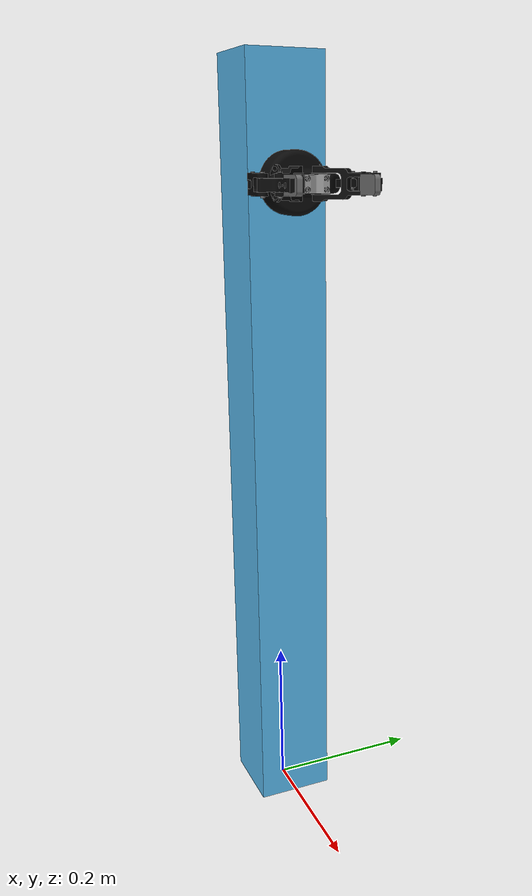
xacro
<?xml version="1.0" ?>

<robot name="robotiq_2f_gripper" xmlns:xacro="http://www.ros.org/wiki/xacro">
  <xacro:include filename="$(find robotiq_description)/urdf/robotiq_2f_gripper.urdf.xacro" />

  <gazebo>
    <plugin name="gazebo_ros_control" filename="libgazebo_ros_control.so">
      <robotNamespace>/</robotNamespace>
    </plugin>
  </gazebo>

  <link name="world"/>
  <joint name="world_fixed" type="fixed">
    <origin xyz="0 0 0" rpy="0 0 0"/>
    <parent link="world"/>
    <child link="gripper_root_link"/>
  </joint>

  <link name="gripper_root_link">
    <visual>
      <origin xyz="0 0 0.5" rpy="0 0 0"/>
      <geometry>
        <box size="0.1 0.1 1.0"/>
      </geometry>
    </visual>
    <collision>
      <origin xyz="0 0 0.5" rpy="0 0 0"/>
      <geometry>
        <box size="0.1 0.1 1.0"/>
      </geometry>
    </collision>
    <inertial>
      <mass value="1e2" />
      <origin xyz="0.0 0.0 0.0" />
      <inertia ixx = "0.000001" ixy = "0.000000" ixz = "0.000000"
           iyx = "0.000000" iyy = "0.000001" iyz = "0.000000"
           izx = "0.000000" izy = "0.000000" izz = "0.000001" />
    </inertial>
  </link>

  <xacro:robotiq_2f_gripper prefix="" parent="gripper_root_link" >
    <origin xyz="0.05 0 0.85" rpy="0 0 0"/>
  </xacro:robotiq_2f_gripper>

</robot>

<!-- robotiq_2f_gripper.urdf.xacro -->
<robot name="robotiq_2f_gripper" xmlns:xacro="http://www.ros.org/wiki/xacro">

  <xacro:include filename="$(find robotiq_description)/urdf/robotiq_2f_gripper.transmission.xacro" />

  <xacro:macro name="robotiq_2f_gripper" params="prefix parent *origin">

    <joint name="${prefix}robotiq_2f_base_joint" type="fixed">
      <parent link="${parent}"/>
      <child link="${prefix}robotiq_2f_base_link"/>
      <xacro:insert_block name="origin"/>
    </joint>

    <link name="${prefix}robotiq_2f_base_link">
      <visual>
        <geometry>
          <mesh filename="package://robotiq_description/meshes/visual/robotiq_2f_base_link.dae"/>
        </geometry>
      </visual>
      <collision>
        <geometry>
          <mesh filename="package://robotiq_description/meshes/collision/robotiq_2f_base_link.stl"/>
        </geometry>
      </collision>
      <inertial>
        <mass value="0.636951" />
        <origin xyz="0.0 0.0 0.0" />
        <inertia ixx = "0.000380" ixy = "0.000000" ixz = "0.000000"
             iyx = "0.000000" iyy = "0.001110" iyz = "0.000000"
             izx = "0.000000" izy = "0.000000" izz = "0.001171" />
      </inertial>
    </link>

    <joint name="${prefix}robotiq_2f_left_knuckle_joint" type="revolute">
      <parent link="${prefix}robotiq_2f_base_link"/>
      <child link="${prefix}robotiq_2f_left_knuckle_link"/>
      <axis xyz="0 0 1"/>
      <origin rpy="${pi} 0.0 0.0" xyz="0.05490451627 0.03060114443 0.0"/>
      <limit lower="0.0" upper="0.80285" velocity="0.5" effort="1000"/>
    </joint>

    <joint name="${prefix}robotiq_2f_right_knuckle_joint" type="continuous">
      <parent link="${prefix}robotiq_2f_base_link"/>
      <child link="${prefix}robotiq_2f_right_knuckle_link"/>
      <axis xyz="0 0 1"/>
      <origin rpy="0.0 0.0 0.0" xyz="0.05490451627 -0.03060114443 0.0"/>
      <limit lower="-3.14" upper="3.14" velocity="100.0" effort="1000"/>
      <mimic joint="${prefix}robotiq_2f_left_knuckle_joint"/>
    </joint>

    <link name="${prefix}robotiq_2f_left_knuckle_link">
      <visual>
        <geometry>
          <mesh filename="package://robotiq_description/meshes/visual/robotiq_2f_knuckle_link.dae"/>
        </geometry>
      </visual>
      <collision>
        <geometry>
          <mesh filename="package://robotiq_description/meshes/collision/robotiq_2f_knuckle_link.stl"/>
        </geometry>
      </collision>
      <inertial>
        <mass value="0.018491" />
        <origin xyz="0.0 0.0 0.0" />
        <inertia ixx = "0.000009" ixy = "-0.000001" ixz = "0.000000"
             iyx = "-0.000001" iyy = "0.000001" iyz = "0.000000"
             izx = "0.000000" izy = "0.000000" izz = "0.000010" />
      </inertial>
    </link>

    <link name="${prefix}robotiq_2f_right_knuckle_link">
      <visual>
        <geometry>
          <mesh filename="package://robotiq_description/meshes/visual/robotiq_2f_knuckle_link.dae"/>
        </geometry>
      </visual>
      <collision>
        <geometry>
          <mesh filename="package://robotiq_description/meshes/collision/robotiq_2f_knuckle_link.stl"/>
        </geometry>
      </collision>
      <inertial>
        <mass value="0.018491" />
        <origin xyz="0.0 0.0 0.0" />
        <inertia ixx = "0.000009" ixy = "-0.000001" ixz = "0.000000"
             iyx = "-0.000001" iyy = "0.000001" iyz = "0.000000"
             izx = "0.000000" izy = "0.000000" izz = "0.000010" />
      </inertial>
    </link>

    <joint name="${prefix}robotiq_2f_left_finger_joint" type="fixed">
      <parent link="${prefix}robotiq_2f_left_knuckle_link"/>
      <child link="${prefix}robotiq_2f_left_finger_link"/>
      <origin xyz="-0.00408552455 -0.03148604435 0.0" rpy="0 0 0" />
    </joint>

    <joint name="${prefix}robotiq_2f_right_finger_joint" type="fixed">
      <parent link="${prefix}robotiq_2f_right_knuckle_link"/>
      <child link="${prefix}robotiq_2f_right_finger_link"/>
      <origin xyz="-0.00408552455 -0.03148604435 0.0" rpy="0 0 0" />
    </joint>

    <link name="${prefix}robotiq_2f_left_finger_link">
      <visual>
        <geometry>
          <mesh filename="package://robotiq_description/meshes/visual/robotiq_2f_finger_link.dae"/>
        </geometry>
      </visual>
      <collision>
        <geometry>
          <mesh filename="package://robotiq_description/meshes/collision/robotiq_2f_finger_link.stl"/>
        </geometry>
      </collision>
      <inertial>
        <mass value="0.027309" />
        <origin xyz="0.0 0.0 0.0" />
        <inertia ixx = "0.000003" ixy = "-0.000002" ixz = "0.000000"
             iyx = "-0.000002" iyy = "0.000021" iyz = "0.000000"
             izx = "0.000000" izy = "0.000000" izz = "0.000020" />
      </inertial>
    </link>

    <link name="${prefix}robotiq_2f_right_finger_link">
      <visual>
        <geometry>
          <mesh filename="package://robotiq_description/meshes/visual/robotiq_2f_finger_link.dae"/>
        </geometry>
      </visual>
      <collision>
        <geometry>
          <mesh filename="package://robotiq_description/meshes/collision/robotiq_2f_finger_link.stl"/>
        </geometry>
      </collision>
      <inertial>
        <mass value="0.027309" />
        <origin xyz="0.0 0.0 0.0" />
        <inertia ixx = "0.000003" ixy = "-0.000002" ixz = "0.000000"
             iyx = "-0.000002" iyy = "0.000021" iyz = "0.000000"
             izx = "0.000000" izy = "0.000000" izz = "0.000020" />
      </inertial>
    </link>

    <joint name="${prefix}robotiq_2f_left_inner_knuckle_joint" type="continuous">
      <parent link="${prefix}robotiq_2f_base_link"/>
      <child link="${prefix}robotiq_2f_left_inner_knuckle_link"/>
      <axis xyz="0 0 1"/>
      <origin xyz="0.06142 0.0127 0" rpy="${pi} 0.0 0.0" />
      <limit lower="-3.14" upper="3.14" velocity="100.0" effort="0.1"/>
      <mimic joint="${prefix}robotiq_2f_left_knuckle_joint" offset="0"/>
    </joint>

    <joint name="${prefix}robotiq_2f_right_inner_knuckle_joint" type="continuous">
      <parent link="${prefix}robotiq_2f_base_link"/>
      <child link="${prefix}robotiq_2f_right_inner_knuckle_link"/>
      <axis xyz="0 0 1"/>
      <origin xyz="0.06142 -0.0127 0" rpy="0 0 0"/>
      <limit lower="-3.14" upper="3.14" velocity="100.0" effort="0.1"/>
      <mimic joint="${prefix}robotiq_2f_left_knuckle_joint" offset="0"/>
    </joint>

    <link name="${prefix}robotiq_2f_left_inner_knuckle_link">
      <visual>
        <geometry>
          <mesh filename="package://robotiq_description/meshes/visual/robotiq_2f_inner_knuckle_link.dae"/>
        </geometry>
      </visual>
      <collision>
        <geometry>
          <mesh filename="package://robotiq_description/meshes/collision/robotiq_2f_inner_knuckle_link.stl"/>
        </geometry>
      </collision>
      <inertial>
        <mass value="0.029951" />
        <origin xyz="0.0 0.0 0.0" />
        <inertia ixx = "0.000039" ixy = "0.000000" ixz = "0.000000"
             iyx = "0.000000" iyy = "0.000005" iyz = "0.000000"
             izx = "0.000000" izy = "0.000000" izz = "0.000035" />
      </inertial>
    </link>
    <link name="${prefix}robotiq_2f_right_inner_knuckle_link">
      <visual>
        <geometry>
          <mesh filename="package://robotiq_description/meshes/visual/robotiq_2f_inner_knuckle_link.dae"/>
        </geometry>
      </visual>
      <collision>
        <geometry>
          <mesh filename="package://robotiq_description/meshes/collision/robotiq_2f_inner_knuckle_link.stl"/>
        </geometry>
      </collision>
      <inertial>
        <mass value="0.029951" />
        <origin xyz="0.0 0.0 0.0" />
        <inertia ixx = "0.000039" ixy = "0.000000" ixz = "0.000000"
             iyx = "0.000000" iyy = "0.000005" iyz = "0.000000"
             izx = "0.000000" izy = "0.000000" izz = "0.000035" />
      </inertial>
    </link>

    <joint name="${prefix}robotiq_2f_left_finger_tip_joint" type="continuous">
      <parent link="${prefix}robotiq_2f_left_inner_knuckle_link"/>
      <child link="${prefix}robotiq_2f_left_finger_tip_link"/>
      <axis xyz="0 0 1"/>
      <origin xyz="0.04303959807 -0.03759940821 0.0" rpy="0.0 0.0 0.0"/>
      <limit lower="-3.14" upper="3.14" velocity="100.0" effort="0.1"/>
      <mimic joint="${prefix}robotiq_2f_left_knuckle_joint" multiplier="-1"/>
    </joint>

    <joint name="${prefix}robotiq_2f_right_finger_tip_joint" type="continuous">
      <parent link="${prefix}robotiq_2f_right_inner_knuckle_link"/>
      <child link="${prefix}robotiq_2f_right_finger_tip_link"/>
      <axis xyz="0 0 1"/>
      <origin rpy="0.0 0.0 0.0" xyz="0.04303959807 -0.03759940821  0.0"/>
      <limit lower="-3.14" upper="3.14" velocity="100.0" effort="0.1"/>
      <mimic joint="${prefix}robotiq_2f_left_knuckle_joint" multiplier="-1"/>
    </joint>

    <link name="${prefix}robotiq_2f_left_finger_tip_link">
      <visual>
        <geometry>
          <mesh filename="package://robotiq_description/meshes/visual/robotiq_2f_finger_tip_link.dae"/>
        </geometry>
      </visual>
      <collision>
        <geometry>
          <mesh filename="package://robotiq_description/meshes/collision/robotiq_2f_finger_tip_link.stl"/>
        </geometry>
      </collision>
      <inertial>
        <mass value="0.019555" />
        <origin xyz="0.0 0.0 0.0" />
        <inertia ixx = "0.000002" ixy = "0.000000" ixz = "0.000000"
             iyx = "0.000000" iyy = "0.000005" iyz = "0.000000"
             izx = "0.000000" izy = "0.000000" izz = "0.000006" />
      </inertial>
    </link>

    <link name="${prefix}robotiq_2f_right_finger_tip_link">
      <visual>
        <geometry>
          <mesh filename="package://robotiq_description/meshes/visual/robotiq_2f_finger_tip_link.dae"/>
        </geometry>
      </visual>
      <collision>
        <geometry>
          <mesh filename="package://robotiq_description/meshes/collision/robotiq_2f_finger_tip_link.stl"/>
        </geometry>
      </collision>
      <inertial>
        <mass value="0.019555" />
        <origin xyz="0.0 0.0 0.0" />
        <inertia ixx = "0.000002" ixy = "0.000000" ixz = "0.000000"
             iyx = "0.000000" iyy = "0.000005" iyz = "0.000000"
             izx = "0.000000" izy = "0.000000" izz = "0.000006" />
      </inertial>
    </link>

    <!-- Improve grasping physics -->
    <gazebo reference="${prefix}robotiq_2f_left_finger_tip_link">
      <kp>1000000.0</kp>
      <kd>1.0</kd>
      <mu1>1.0</mu1>
      <mu2>1.0</mu2>
      <minDepth>0.001</minDepth>
    </gazebo>
    <gazebo reference="${prefix}robotiq_2f_right_finger_tip_link">
      <kp>1000000.0</kp>
      <kd>1.0</kd>
      <mu1>1.0</mu1>
      <mu2>1.0</mu2>
      <minDepth>0.001</minDepth>
    </gazebo>

    <xacro:robotiq_2f_gripper_transmission prefix="${prefix}" />

  </xacro:macro>
</robot>
